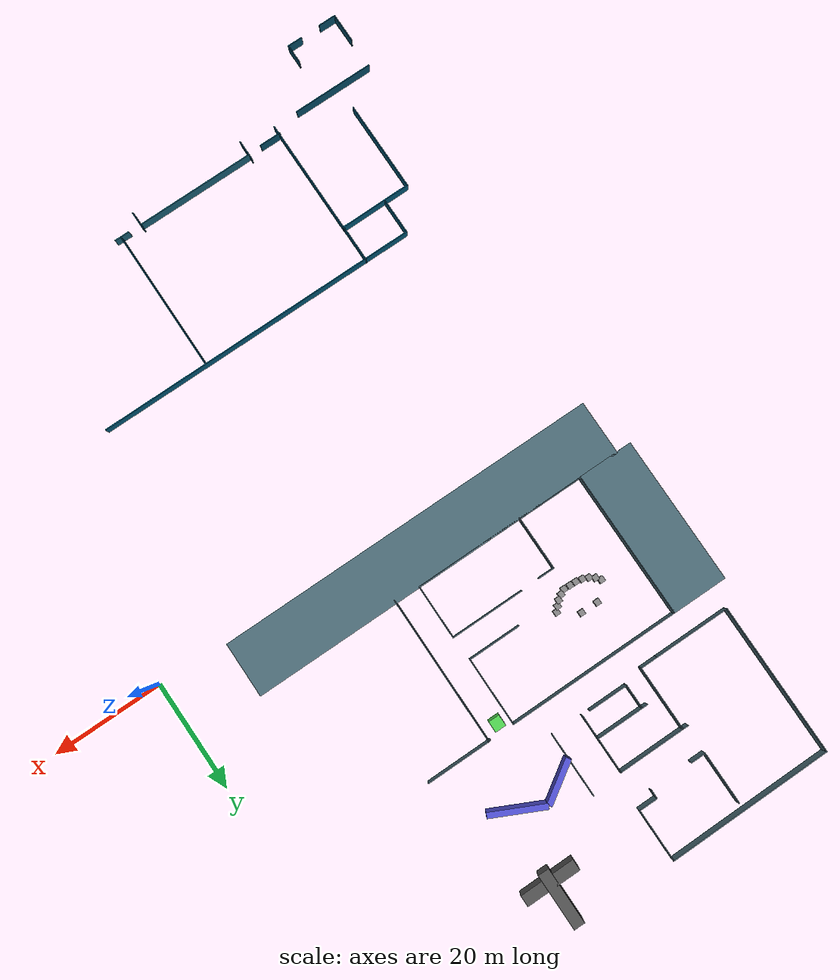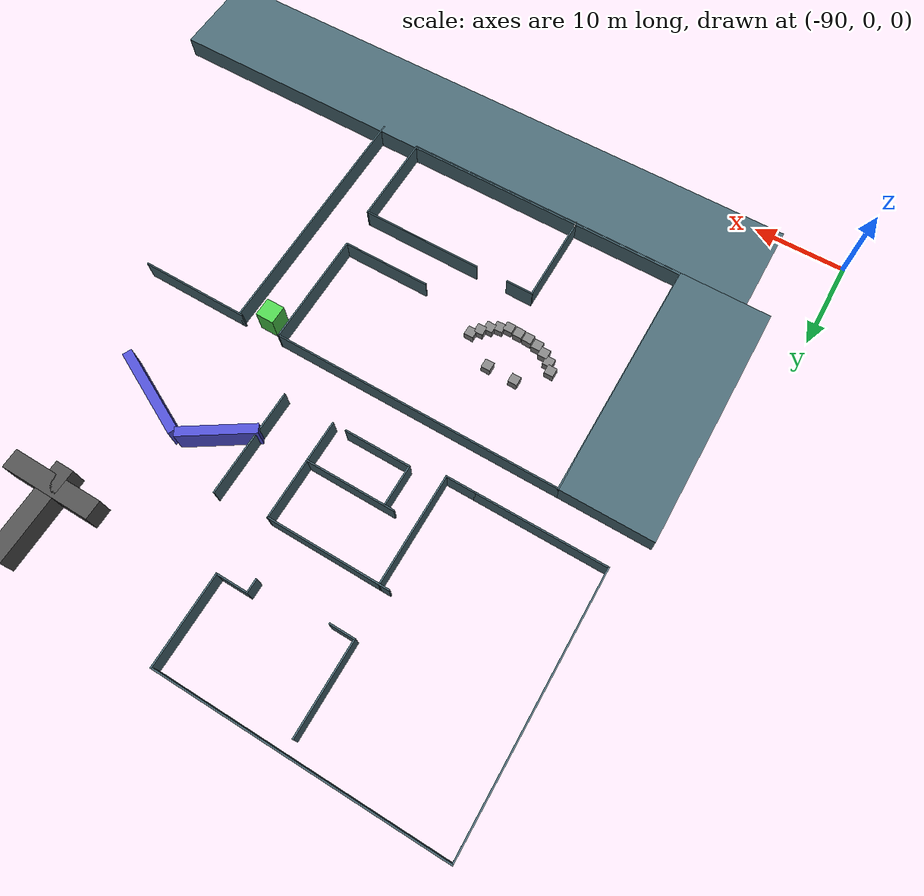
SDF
<sdf version="1.6">
 <model name="eceb_mp3">
  <pose>2.10284 -4.41124 0 0 -0 0</pose>
  <link name="Wall_10">
   <collision name="Wall_10_Collision">
    <geometry><box><size>7 0.15 2.5</size></box></geometry>
    <pose>0 0 1.25 0 -0 0</pose>
   </collision>
   <visual name="Wall_10_Visual">
    <pose>0 0 1.25 0 -0 0</pose>
    <geometry><box><size>7.25 0.15 2.5</size></box></geometry>
    <material>
     <script><uri>file://media/materials/scripts/gazebo.material</uri><name>Gazebo/Grey</name></script>
     <ambient>0.282353 0.403922 0.447059 1</ambient>
    </material>
    <meta><layer>0</layer></meta>
   </visual>
   <pose>-61.0369 46.7249 0 0 -0 0</pose>
  </link>
  <link name="Wall_102">
   <collision name="Wall_102_Collision">
    <geometry><box><size>12 0.15 2.5</size></box></geometry>
    <pose>0 0 1.25 0 -0 0</pose>
   </collision>
   <visual name="Wall_102_Visual">
    <pose>0 0 1.25 0 -0 0</pose>
    <geometry><box><size>12 0.15 2.5</size></box></geometry>
    <material>
     <script><uri>file://media/materials/scripts/gazebo.material</uri><name>Gazebo/Grey</name></script>
     <ambient>0.282353 0.403922 0.447059 1</ambient>
    </material>
    <meta><layer>0</layer></meta>
   </visual>
   <pose>-35.6171 41.6407 0 0 -0 0</pose>
  </link>
  <link name="Wall_105">
   <collision name="Wall_105_Collision">
    <geometry><box><size>27 0.15 2.5</size></box></geometry>
    <pose>0 0 1.25 0 -0 0</pose>
   </collision>
   <visual name="Wall_105_Visual">
    <pose>0 0 1.25 0 -0 0</pose>
    <geometry><box><size>27.25 0.15 2.5</size></box></geometry>
    <material>
     <script><uri>file://media/materials/scripts/gazebo.material</uri><name>Gazebo/Grey</name></script>
     <ambient>0.282353 0.403922 0.447059 1</ambient>
    </material>
    <meta><layer>0</layer></meta>
   </visual>
   <pose>-41.2921 28.0907 0 0 -0 1.5708</pose>
  </link>
  <link name="Wall_111">
   <collision name="Wall_111_Collision">
    <geometry><box><size>70 10 2.5</size></box></geometry>
    <pose>0 0 1.25 0 -0 0</pose>
   </collision>
   <visual name="Wall_111_Visual">
    <pose>0 0 1.25 0 -0 0</pose>
    <geometry><box><size>70 10 2.5</size></box></geometry>
    <material>
     <script><uri>file://media/materials/scripts/gazebo.material</uri><name>Gazebo/Grey</name></script>
     <ambient>0.282353 0.403922 0.447059 1</ambient>
    </material>
    <meta><layer>0</layer></meta>
   </visual>
   <pose>-50 10.230800 0 0 -0 3.14159</pose>
  </link>
  <link name="Wall_12">
   <collision name="Wall_12_Collision">
    <geometry><box><size>4 0.15 2.5</size></box></geometry>
    <pose>0 0 1.25 0 -0 0</pose>
   </collision>
   <visual name="Wall_12_Visual">
    <pose>0 0 1.25 0 -0 0</pose>
    <geometry><box><size>4.5 0.15 2.5</size></box></geometry>
    <material>
     <script><uri>file://media/materials/scripts/gazebo.material</uri><name>Gazebo/Grey</name></script>
     <ambient>0.282353 0.403922 0.447059 1</ambient>
    </material>
    <meta><layer>0</layer></meta>
   </visual>
   <pose>-55.9869 48.8998 0 0 -0 -1.5708</pose>
  </link>
  <link name="Wall_135">
   <collision name="Wall_135_Collision">
    <geometry><box><size>59 0.15 2.5</size></box></geometry>
    <pose>0 0 1.25 0 -0 0</pose>
   </collision>
   <visual name="Wall_135_Visual">
    <pose>0 0 1.25 0 -0 0</pose>
    <geometry><box><size>59.75 0.15 2.5</size></box></geometry>
    <material>
     <script><uri>file://media/materials/scripts/gazebo.material</uri><name>Gazebo/Grey</name></script>
     <ambient>0.00784314 0.372549 0.505882 1</ambient>
    </material>
    <meta><layer>0</layer></meta>
   </visual>
   <pose>-47.3625 -35.069 0 0 -0 3.14159</pose>
  </link>
  <link name="Wall_137">
   <collision name="Wall_137_Collision">
    <geometry><box><size>6 0.15 2.5</size></box></geometry>
    <pose>0 0 1.25 0 -0 0</pose>
   </collision>
   <visual name="Wall_137_Visual">
    <pose>0 0 1.25 0 -0 0</pose>
    <geometry><box><size>6.75 0.15 2.5</size></box></geometry>
    <material>
     <script><uri>file://media/materials/scripts/gazebo.material</uri><name>Gazebo/Grey</name></script>
     <ambient>0.00784314 0.372549 0.505882 1</ambient>
    </material>
    <meta><layer>0</layer></meta>
   </visual>
   <pose>-77.1625 -38.369 0 0 -0 -1.5708</pose>
  </link>
  <link name="Wall_138">
   <collision name="Wall_138_Collision">
    <geometry><box><size>4 0.15 2.5</size></box></geometry>
    <pose>0 0 1.25 0 -0 0</pose>
   </collision>
   <visual name="Wall_138_Visual">
    <pose>0 0 1.25 0 -0 0</pose>
    <geometry><box><size>4.75 0.15 2.5</size></box></geometry>
    <material>
     <script><uri>file://media/materials/scripts/gazebo.material</uri><name>Gazebo/Grey</name></script>
     <ambient>0.00784314 0.372549 0.505882 1</ambient>
    </material>
    <meta><layer>0</layer></meta>
   </visual>
   <pose>-79.4625 -41.669 0 0 -0 3.14159</pose>
  </link>
  <link name="Wall_139">
   <collision name="Wall_139_Collision">
    <geometry><box><size>16 0.15 2.5</size></box></geometry>
    <pose>0 0 1.25 0 -0 0</pose>
   </collision>
   <visual name="Wall_139_Visual">
    <pose>0 0 1.25 0 -0 0</pose>
    <geometry><box><size>16.5 0.15 2.5</size></box></geometry>
    <material>
     <script><uri>file://media/materials/scripts/gazebo.material</uri><name>Gazebo/Grey</name></script>
     <ambient>0.00784314 0.372549 0.505882 1</ambient>
    </material>
    <meta><layer>0</layer></meta>
   </visual>
   <pose>-81.7625 -49.844 0 0 -0 -1.5708</pose>
  </link>
  <link name="Wall_141">
   <collision name="Wall_141_Collision">
    <geometry><box><size>14 0.15 2.5</size></box></geometry>
    <pose>0 0 1.25 0 -0 0</pose>
   </collision>
   <visual name="Wall_141_Visual">
    <pose>0 0 1.25 0 -0 0</pose>
    <geometry><box><size>14.75 0.15 2.5</size></box></geometry>
    <material>
     <script><uri>file://media/materials/scripts/gazebo.material</uri><name>Gazebo/Grey</name></script>
     <ambient>0.0313726 0.333333 0.443137 1</ambient>
    </material>
    <meta><layer>0</layer></meta>
   </visual>
   <pose>-80.7569 -62.752 0 0 -0 0</pose>
  </link>
  <link name="Wall_143">
   <collision name="Wall_143_Collision">
    <geometry><box><size>5 0.15 2.5</size></box></geometry>
    <pose>0 0 1.25 0 -0 0</pose>
   </collision>
   <visual name="Wall_143_Visual">
    <pose>0 0 1.25 0 -0 0</pose>
    <geometry><box><size>5.25 0.15 2.5</size></box></geometry>
    <material>
     <script><uri>file://media/materials/scripts/gazebo.material</uri><name>Gazebo/Grey</name></script>
     <ambient>0.0313726 0.333333 0.443137 1</ambient>
    </material>
    <meta><layer>0</layer></meta>
   </visual>
   <pose>-88.1514 -70.7787 0 0 -0 -1.5708</pose>
  </link>
  <link name="Wall_144">
   <collision name="Wall_144_Collision">
    <geometry><box><size>3 0.15 2.5</size></box></geometry>
    <pose>0 0 1.25 0 -0 0</pose>
   </collision>
   <visual name="Wall_144_Visual">
    <pose>0 0 1.25 0 -0 0</pose>
    <geometry><box><size>3.25 0.15 2.5</size></box></geometry>
    <material>
     <script><uri>file://media/materials/scripts/gazebo.material</uri><name>Gazebo/Grey</name></script>
     <ambient>0.0313726 0.333333 0.443137 1</ambient>
    </material>
    <meta><layer>0</layer></meta>
   </visual>
   <pose>-86.6014 -73.3287 0 0 -0 0</pose>
  </link>
  <link name="Wall_146">
   <collision name="Wall_146_Collision">
    <geometry><box><size>2 0.15 2.5</size></box></geometry>
    <pose>0 0 1.25 0 -0 0</pose>
   </collision>
   <visual name="Wall_146_Visual">
    <pose>0 0 1.25 0 -0 0</pose>
    <geometry><box><size>2.75 0.15 2.5</size></box></geometry>
    <material>
     <script><uri>file://media/materials/scripts/gazebo.material</uri><name>Gazebo/Grey</name></script>
     <ambient>0.0313726 0.333333 0.443137 1</ambient>
    </material>
    <meta><layer>0</layer></meta>
   </visual>
   <pose>-79.9583 -73.2333 0 0 -0 0</pose>
  </link>
  <link name="Wall_147">
   <collision name="Wall_147_Collision">
    <geometry><box><size>3 0.15 2.5</size></box></geometry>
    <pose>0 0 1.25 0 -0 0</pose>
   </collision>
   <visual name="Wall_147_Visual">
    <pose>0 0 1.25 0 -0 0</pose>
    <geometry><box><size>3.5 0.15 2.5</size></box></geometry>
    <material>
     <script><uri>file://media/materials/scripts/gazebo.material</uri><name>Gazebo/Grey</name></script>
     <ambient>0.0313726 0.333333 0.443137 1</ambient>
    </material>
    <meta><layer>0</layer></meta>
   </visual>
   <pose>-78.6583 -71.5583 0 0 -0 1.5708</pose>
  </link>
  <link name="Wall_156">
   <collision name="Wall_156_Collision">
    <geometry><box><size>21 0.15 2.5</size></box></geometry>
    <pose>0 0 1.25 0 -0 0</pose>
   </collision>
   <visual name="Wall_156_Visual">
    <pose>0 0 1.25 0 -0 0</pose>
    <geometry><box><size>21.25 0.15 2.5</size></box></geometry>
    <material>
     <script><uri>file://media/materials/scripts/gazebo.material</uri><name>Gazebo/Grey</name></script>
     <ambient>0.00784314 0.372549 0.505882 1</ambient>
    </material>
    <meta><layer>0</layer></meta>
   </visual>
   <pose>-68.8592 -52.1746 0 0 -0 1.5708</pose>
  </link>
  <link name="Wall_157">
   <collision name="Wall_157_Collision">
    <geometry><box><size>8 0.15 2.5</size></box></geometry>
    <pose>0 0 1.25 0 -0 0</pose>
   </collision>
   <visual name="Wall_157_Visual">
    <pose>0 0 1.25 0 -0 0</pose>
    <geometry><box><size>8.4534 0.15 2.5</size></box></geometry>
    <material>
     <script><uri>file://media/materials/scripts/gazebo.material</uri><name>Gazebo/Grey</name></script>
     <ambient>0.00784314 0.372549 0.505882 1</ambient>
    </material>
    <meta><layer>0</layer></meta>
   </visual>
   <pose>-73.0109 -41.6468 0 0 -0 -3.13625</pose>
  </link>
  <link name="Wall_159">
   <collision name="Wall_159_Collision">
    <geometry><box><size>7 0.15 2.5</size></box></geometry>
    <pose>0 0 1.25 0 -0 0</pose>
   </collision>
   <visual name="Wall_159_Visual">
    <pose>0 0 1.25 0 -0 0</pose>
    <geometry><box><size>7 0.15 2.5</size></box></geometry>
    <material>
     <script><uri>file://media/materials/scripts/gazebo.material</uri><name>Gazebo/Grey</name></script>
     <ambient>0.00784314 0.372549 0.505882 1</ambient>
    </material>
    <meta><layer>0</layer></meta>
   </visual>
   <pose>-68.9119 -38.4042 0 0 -0 -1.5708</pose>
  </link>
  <link name="Wall_16">
   <collision name="Wall_16_Collision">
    <geometry><box><size>11 0.15 2.5</size></box></geometry>
    <pose>0 0 1.25 0 -0 0</pose>
   </collision>
   <visual name="Wall_16_Visual">
    <pose>0 0 1.25 0 -0 0</pose>
    <geometry><box><size>11.5 0.15 2.5</size></box></geometry>
    <material>
     <script><uri>file://media/materials/scripts/gazebo.material</uri><name>Gazebo/Grey</name></script>
     <ambient>0.282353 0.403922 0.447059 1</ambient>
    </material>
    <meta><layer>0</layer></meta>
   </visual>
   <pose>-50.2987 52.2876 0 0 -0 -1.5708</pose>
  </link>
  <link name="Wall_161">
   <collision name="Wall_161_Collision">
    <geometry><box><size>4 0.15 2.5</size></box></geometry>
    <pose>0 0 1.25 0 -0 0</pose>
   </collision>
   <visual name="Wall_161_Visual">
    <pose>0 0 1.25 0 -0 0</pose>
    <geometry><box><size>4 0.15 2.5</size></box></geometry>
    <material>
     <script><uri>file://media/materials/scripts/gazebo.material</uri><name>Gazebo/Grey</name></script>
     <ambient>0.0313726 0.333333 0.443137 1</ambient>
    </material>
    <meta><layer>0</layer></meta>
   </visual>
   <pose>-67.0768 -61.2451 0 0 -0 3.14159</pose>
  </link>
  <link name="Wall_163">
   <collision name="Wall_163_Collision">
    <geometry><box><size>3 0.15 2.5</size></box></geometry>
    <pose>0 0 1.25 0 -0 0</pose>
   </collision>
   <visual name="Wall_163_Visual">
    <pose>0 0 1.25 0 -0 0</pose>
    <geometry><box><size>3.5 0.15 2.5</size></box></geometry>
    <material>
     <script><uri>file://media/materials/scripts/gazebo.material</uri><name>Gazebo/Grey</name></script>
     <ambient>0.0313726 0.333333 0.443137 1</ambient>
    </material>
    <meta><layer>0</layer></meta>
   </visual>
   <pose>-62.6452 -62.0149 0 0 -0 -1.5708</pose>
  </link>
  <link name="Wall_166">
   <collision name="Wall_166_Collision">
    <geometry><box><size>21 0.15 2.5</size></box></geometry>
    <pose>0 0 1.25 0 -0 0</pose>
   </collision>
   <visual name="Wall_166_Visual">
    <pose>0 0 1.25 0 -0 0</pose>
    <geometry><box><size>21.5 0.15 2.5</size></box></geometry>
    <material>
     <script><uri>file://media/materials/scripts/gazebo.material</uri><name>Gazebo/Grey</name></script>
     <ambient>0.109804 0.415686 0.505882 1</ambient>
    </material>
    <meta><layer>0</layer></meta>
   </visual>
   <pose>-51.8547 -61.0074 0 0 -0 0</pose>
  </link>
  <link name="Wall_168">
   <collision name="Wall_168_Collision">
    <geometry><box><size>3 0.15 2.5</size></box></geometry>
    <pose>0 0 1.25 0 -0 0</pose>
   </collision>
   <visual name="Wall_168_Visual">
    <pose>0 0 1.25 0 -0 0</pose>
    <geometry><box><size>3.25 0.15 2.5</size></box></geometry>
    <material>
     <script><uri>file://media/materials/scripts/gazebo.material</uri><name>Gazebo/Grey</name></script>
     <ambient>0.0313726 0.333333 0.443137 1</ambient>
    </material>
    <meta><layer>0</layer></meta>
   </visual>
   <pose>-40.9887 -61.8787 0 0 -0 -1.5708</pose>
  </link>
  <link name="Wall_170">
   <collision name="Wall_170_Collision">
    <geometry><box><size>2 0.15 2.5</size></box></geometry>
    <pose>0 0 1.25 0 -0 0</pose>
   </collision>
   <visual name="Wall_170_Visual">
    <pose>0 0 1.25 0 -0 0</pose>
    <geometry><box><size>2.75 0.15 2.5</size></box></geometry>
    <material>
     <script><uri>file://media/materials/scripts/gazebo.material</uri><name>Gazebo/Grey</name></script>
     <ambient>0.109804 0.415686 0.505882 1</ambient>
    </material>
    <meta><layer>0</layer></meta>
   </visual>
   <pose>-37.3257 -61.0997 0 0 -0 0</pose>
  </link>
  <link name="Wall_172">
   <collision name="Wall_172_Collision">
    <geometry><box><size>26 0.15 2.5</size></box></geometry>
    <pose>0 0 1.25 0 -0 0</pose>
   </collision>
   <visual name="Wall_172_Visual">
    <pose>0 0 1.25 0 -0 0</pose>
    <geometry><box><size>26 0.15 2.5</size></box></geometry>
    <material>
     <script><uri>file://media/materials/scripts/gazebo.material</uri><name>Gazebo/Grey</name></script>
     <ambient>0.00784314 0.372549 0.505882 1</ambient>
    </material>
    <meta><layer>0</layer></meta>
   </visual>
   <pose>-37.0975 -48.0841 0 0 -0 -1.5708</pose>
  </link>
  <link name="Wall_2">
   <collision name="Wall_2_Collision">
    <geometry><box><size>27 0.15 2.5</size></box></geometry>
    <pose>0 0 1.25 0 -0 0</pose>
   </collision>
   <visual name="Wall_2_Visual">
    <pose>0 0 1.25 0 -0 0</pose>
    <geometry><box><size>27.5 0.15 2.5</size></box></geometry>
    <material>
     <script><uri>file://media/materials/scripts/gazebo.material</uri><name>Gazebo/Grey</name></script>
     <ambient>0.282353 0.403922 0.447059 1</ambient>
    </material>
    <meta><layer>0</layer></meta>
   </visual>
   <pose>-85.0369 59.4999 0 0 -0 -1.5708</pose>
  </link>
  <link name="Wall_3">
   <collision name="Wall_3_Collision">
    <geometry><box><size>14 0.15 2.5</size></box></geometry>
    <pose>0 0 1.25 0 -0 0</pose>
   </collision>
   <visual name="Wall_3_Visual">
    <pose>0 0 1.25 0 -0 0</pose>
    <geometry><box><size>14 0.15 2.5</size></box></geometry>
    <material>
     <script><uri>file://media/materials/scripts/gazebo.material</uri><name>Gazebo/Grey</name></script>
     <ambient>0.282353 0.403922 0.447059 1</ambient>
    </material>
    <meta><layer>0</layer></meta>
   </visual>
   <pose>-78.1119 45.8249 0 0 -0 0</pose>
  </link>
  <link name="Wall_32">
   <collision name="Wall_32_Collision">
    <geometry><box><size>30 0.15 2.5</size></box></geometry>
    <pose>0 0 1.25 0 -0 0</pose>
   </collision>
   <visual name="Wall_32_Visual">
    <pose>0 0 1.25 0 -0 0</pose>
    <geometry><box><size>30.1457 0.15 2.5</size></box></geometry>
    <material>
     <script><uri>file://media/materials/scripts/gazebo.material</uri><name>Gazebo/Grey</name></script>
     <ambient>0.282353 0.403922 0.447059 1</ambient>
    </material>
    <meta><layer>0</layer></meta>
   </visual>
   <pose>-70.0392 73.2357 0 0 -0 0.00406</pose>
  </link>
  <link name="Wall_34">
   <collision name="Wall_34_Collision">
    <geometry><box><size>9 0.15 2.5</size></box></geometry>
    <pose>0 0 1.25 0 -0 0</pose>
   </collision>
   <visual name="Wall_34_Visual">
    <pose>0 0 1.25 0 -0 0</pose>
    <geometry><box><size>9.5 0.15 2.5</size></box></geometry>
    <material>
     <script><uri>file://media/materials/scripts/gazebo.material</uri><name>Gazebo/Grey</name></script>
     <ambient>0.282353 0.403922 0.447059 1</ambient>
    </material>
    <meta><layer>0</layer></meta>
   </visual>
   <pose>-68.8084 67.1704 0 0 -0 -1.5708</pose>
  </link>
  <link name="Wall_35">
   <collision name="Wall_35_Collision">
    <geometry><box><size>2 0.15 2.5</size></box></geometry>
    <pose>0 0 1.25 0 -0 0</pose>
   </collision>
   <visual name="Wall_35_Visual">
    <pose>0 0 1.25 0 -0 0</pose>
    <geometry><box><size>2.75 0.15 2.5</size></box></geometry>
    <material>
     <script><uri>file://media/materials/scripts/gazebo.material</uri><name>Gazebo/Grey</name></script>
     <ambient>0.282353 0.403922 0.447059 1</ambient>
    </material>
    <meta><layer>0</layer></meta>
   </visual>
   <pose>-67.5083 62.4954 0 0 -0 0</pose>
  </link>
  <link name="Wall_37">
   <collision name="Wall_37_Collision">
    <geometry><box><size>9 0.15 2.5</size></box></geometry>
    <pose>0 0 1.25 0 -0 0</pose>
   </collision>
   <visual name="Wall_37_Visual">
    <pose>0 0 1.25 0 -0 0</pose>
    <geometry><box><size>9.5 0.15 2.5</size></box></geometry>
    <material>
     <script><uri>file://media/materials/scripts/gazebo.material</uri><name>Gazebo/Grey</name></script>
     <ambient>0.282353 0.403922 0.447059 1</ambient>
    </material>
    <meta><layer>0</layer></meta>
   </visual>
   <pose>-55.0415 68.6216 0 0 -0 -1.5708</pose>
  </link>
  <link name="Wall_38">
   <collision name="Wall_38_Collision">
    <geometry><box><size>3 0.15 2.5</size></box></geometry>
    <pose>0 0 1.25 0 -0 0</pose>
   </collision>
   <visual name="Wall_38_Visual">
    <pose>0 0 1.25 0 -0 0</pose>
    <geometry><box><size>3.5 0.15 2.5</size></box></geometry>
    <material>
     <script><uri>file://media/materials/scripts/gazebo.material</uri><name>Gazebo/Grey</name></script>
     <ambient>0.282353 0.403922 0.447059 1</ambient>
    </material>
    <meta><layer>0</layer></meta>
   </visual>
   <pose>-56.7165 63.9466 0 0 -0 3.14159</pose>
  </link>
  <link name="Wall_4">
   <collision name="Wall_4_Collision">
    <geometry><box><size>3 0.15 2.5</size></box></geometry>
    <pose>0 0 1.25 0 -0 0</pose>
   </collision>
   <visual name="Wall_4_Visual">
    <pose>0 0 1.25 0 -0 0</pose>
    <geometry><box><size>3.25 0.15 2.5</size></box></geometry>
    <material>
     <script><uri>file://media/materials/scripts/gazebo.material</uri><name>Gazebo/Grey</name></script>
     <ambient>0.282353 0.403922 0.447059 1</ambient>
    </material>
    <meta><layer>0</layer></meta>
   </visual>
   <pose>-69.6369 45.8249 0 0 -0 0</pose>
  </link>
  <link name="Wall_43">
   <collision name="Wall_43_Collision">
    <geometry><box><size>1 0.15 2.5</size></box></geometry>
    <pose>0 0 1.25 0 -0 0</pose>
   </collision>
   <visual name="Wall_43_Visual">
    <pose>0 0 1.25 0 -0 0</pose>
    <geometry><box><size>1.5 0.15 2.5</size></box></geometry>
    <material>
     <script><uri>file://media/materials/scripts/gazebo.material</uri><name>Gazebo/Grey</name></script>
     <ambient>0.282353 0.403922 0.447059 1</ambient>
    </material>
    <meta><layer>0</layer></meta>
   </visual>
   <pose>-58.3915 63.2716 0 0 -0 -1.5708</pose>
  </link>
  <link name="Wall_5">
   <collision name="Wall_5_Collision">
    <geometry><box><size>11 0.15 2.5</size></box></geometry>
    <pose>0 0 1.25 0 -0 0</pose>
   </collision>
   <visual name="Wall_5_Visual">
    <pose>0 0 1.25 0 -0 0</pose>
    <geometry><box><size>11.75 0.15 2.5</size></box></geometry>
    <material>
     <script><uri>file://media/materials/scripts/gazebo.material</uri><name>Gazebo/Grey</name></script>
     <ambient>0.282353 0.403922 0.447059 1</ambient>
    </material>
    <meta><layer>0</layer></meta>
   </visual>
   <pose>-68.0869 51.6249 0 0 -0 1.5708</pose>
  </link>
  <link name="Wall_6">
   <collision name="Wall_6_Collision">
    <geometry><box><size>13 0.15 2.5</size></box></geometry>
    <pose>0 0 1.25 0 -0 0</pose>
   </collision>
   <visual name="Wall_6_Visual">
    <pose>0 0 1.25 0 -0 0</pose>
    <geometry><box><size>13.25 0.15 2.5</size></box></geometry>
    <material>
     <script><uri>file://media/materials/scripts/gazebo.material</uri><name>Gazebo/Grey</name></script>
     <ambient>0.282353 0.403922 0.447059 1</ambient>
    </material>
    <meta><layer>0</layer></meta>
   </visual>
   <pose>-62.5369 57.4248 0 0 -0 0</pose>
  </link>
  <link name="Wall_7">
   <collision name="Wall_7_Collision">
    <geometry><box><size>6 0.15 2.5</size></box></geometry>
    <pose>0 0 1.25 0 -0 0</pose>
   </collision>
   <visual name="Wall_7_Visual">
    <pose>0 0 1.25 0 -0 0</pose>
    <geometry><box><size>6.5 0.15 2.5</size></box></geometry>
    <material>
     <script><uri>file://media/materials/scripts/gazebo.material</uri><name>Gazebo/Grey</name></script>
     <ambient>0.282353 0.403922 0.447059 1</ambient>
    </material>
    <meta><layer>0</layer></meta>
   </visual>
   <pose>-55.9869 54.2499 0 0 -0 -1.5708</pose>
  </link>
  <link name="Wall_8">
   <collision name="Wall_8_Collision">
    <geometry><box><size>9 0.15 2.5</size></box></geometry>
    <pose>0 0 1.25 0 -0 0</pose>
   </collision>
   <visual name="Wall_8_Visual">
    <pose>0 0 1.25 0 -0 0</pose>
    <geometry><box><size>9.75 0.15 2.5</size></box></geometry>
    <material>
     <script><uri>file://media/materials/scripts/gazebo.material</uri><name>Gazebo/Grey</name></script>
     <ambient>0.282353 0.403922 0.447059 1</ambient>
    </material>
    <meta><layer>0</layer></meta>
   </visual>
   <pose>-60.7869 51.0749 0 0 -0 3.14159</pose>
  </link>
  <link name="Wall_80">
   <collision name="Wall_80_Collision">
    <geometry><box><size>26 0.15 2.5</size></box></geometry>
    <pose>0 0 1.25 0 -0 0</pose>
   </collision>
   <visual name="Wall_80_Visual">
    <pose>0 0 1.25 0 -0 0</pose>
    <geometry><box><size>26.75 0.15 2.5</size></box></geometry>
    <material>
     <script><uri>file://media/materials/scripts/gazebo.material</uri><name>Gazebo/Grey</name></script>
     <ambient>0.282353 0.403922 0.447059 1</ambient>
    </material>
    <meta><layer>0</layer></meta>
   </visual>
   <pose>-77.6772 28.3223 0 0 -0 -1.5708</pose>
  </link>
  <link name="Wall_113">
   <collision name="Wall_113_Collision">
    <geometry><box><size>26 10 2.5</size></box></geometry>
    <pose>0 0 1.25 0 -0 0</pose>
   </collision>
   <visual name="Wall_113_Visual">
    <pose>0 0 1.25 0 -0 0</pose>
    <geometry><box><size>26.75 10 2.5</size></box></geometry>
    <material>
     <script><uri>file://media/materials/scripts/gazebo.material</uri><name>Gazebo/Grey</name></script>
     <ambient>0.282353 0.403922 0.447059 1</ambient>
    </material>
    <meta><layer>0</layer></meta>
   </visual>
   <pose>-82.6772 28.3223 0 0 -0 -1.5708</pose>
  </link>
  <link name="Wall_81">
   <collision name="Wall_81_Collision">
    <geometry><box><size>32 0.15 2.5</size></box></geometry>
    <pose>0 0 1.25 0 -0 0</pose>
   </collision>
   <visual name="Wall_81_Visual">
    <pose>0 0 1.25 0 -0 0</pose>
    <geometry><box><size>32 0.15 2.5</size></box></geometry>
    <material>
     <script><uri>file://media/materials/scripts/gazebo.material</uri><name>Gazebo/Grey</name></script>
     <ambient>0.282353 0.403922 0.447059 1</ambient>
    </material>
    <meta><layer>0</layer></meta>
   </visual>
   <pose>-61.7522 15.0223 0 0 -0 0</pose>
  </link>
  <link name="Wall_82">
   <collision name="Wall_82_Collision">
    <geometry><box><size>10 0.15 2.5</size></box></geometry>
    <pose>0 0 1.25 0 -0 0</pose>
   </collision>
   <visual name="Wall_82_Visual">
    <pose>0 0 1.25 0 -0 0</pose>
    <geometry><box><size>10 0.15 2.5</size></box></geometry>
    <material>
     <script><uri>file://media/materials/scripts/gazebo.material</uri><name>Gazebo/Grey</name></script>
     <ambient>0.282353 0.403922 0.447059 1</ambient>
    </material>
    <meta><layer>0</layer></meta>
   </visual>
   <pose>-45.8272 19.9473 0 0 -0 1.5708</pose>
  </link>
  <link name="Wall_83">
   <collision name="Wall_83_Collision">
    <geometry><box><size>13 0.15 2.5</size></box></geometry>
    <pose>0 0 1.25 0 -0 0</pose>
   </collision>
   <visual name="Wall_83_Visual">
    <pose>0 0 1.25 0 -0 0</pose>
    <geometry><box><size>13.5 0.15 2.5</size></box></geometry>
    <material>
     <script><uri>file://media/materials/scripts/gazebo.material</uri><name>Gazebo/Grey</name></script>
     <ambient>0.282353 0.403922 0.447059 1</ambient>
    </material>
    <meta><layer>0</layer></meta>
   </visual>
   <pose>-52.5022 24.8723 0 0 -0 3.14159</pose>
  </link>
  <link name="Wall_85">
   <collision name="Wall_85_Collision">
    <geometry><box><size>3 0.15 2.5</size></box></geometry>
    <pose>0 0 1.25 0 -0 0</pose>
   </collision>
   <visual name="Wall_85_Visual">
    <pose>0 0 1.25 0 -0 0</pose>
    <geometry><box><size>3 0.15 2.5</size></box></geometry>
    <material>
     <script><uri>file://media/materials/scripts/gazebo.material</uri><name>Gazebo/Grey</name></script>
     <ambient>0.282353 0.403922 0.447059 1</ambient>
    </material>
    <meta><layer>0</layer></meta>
   </visual>
   <pose>-64.1821 24.7849 0 0 -0 3.14159</pose>
  </link>
  <link name="Wall_86">
   <collision name="Wall_86_Collision">
    <geometry><box><size>10 0.15 2.5</size></box></geometry>
    <pose>0 0 1.25 0 -0 0</pose>
   </collision>
   <visual name="Wall_86_Visual">
    <pose>0 0 1.25 0 -0 0</pose>
    <geometry><box><size>10 0.15 2.5</size></box></geometry>
    <material>
     <script><uri>file://media/materials/scripts/gazebo.material</uri><name>Gazebo/Grey</name></script>
     <ambient>0.282353 0.403922 0.447059 1</ambient>
    </material>
    <meta><layer>0</layer></meta>
   </visual>
   <pose>-65.6071 19.8599 0 0 -0 -1.5708</pose>
  </link>
  <link name="Wall_87">
   <collision name="Wall_87_Collision">
    <geometry><box><size>0.75 0.15 2.5</size></box></geometry>
    <pose>0 0 1.25 0 -0 0</pose>
   </collision>
   <visual name="Wall_87_Visual">
    <pose>0 0 1.25 0 -0 0</pose>
    <geometry><box><size>0.75 0.15 2.5</size></box></geometry>
    <material>
     <script><uri>file://media/materials/scripts/gazebo.material</uri><name>Gazebo/Grey</name></script>
     <ambient>1 1 1 1</ambient>
    </material>
    <meta><layer>0</layer></meta>
   </visual>
   <pose>-65.6071 15.2349 0 0 -0 1.5708</pose>
  </link>
  <link name="Wall_9">
   <collision name="Wall_9_Collision">
    <geometry><box><size>4 0.15 2.5</size></box></geometry>
    <pose>0 0 1.25 0 -0 0</pose>
   </collision>
   <visual name="Wall_9_Visual">
    <pose>0 0 1.25 0 -0 0</pose>
    <geometry><box><size>4.5 0.15 2.5</size></box></geometry>
    <material>
     <script><uri>file://media/materials/scripts/gazebo.material</uri><name>Gazebo/Grey</name></script>
     <ambient>0.282353 0.403922 0.447059 1</ambient>
    </material>
    <meta><layer>0</layer></meta>
   </visual>
   <pose>-64.5869 48.8998 0 0 -0 -1.5708</pose>
  </link>
  <link name="Wall_92">
   <collision name="Wall_92_Collision">
    <geometry><box><size>31 0.15 2.5</size></box></geometry>
    <pose>0 0 1.25 0 -0 0</pose>
   </collision>
   <visual name="Wall_92_Visual">
    <pose>0 0 1.25 0 -0 0</pose>
    <geometry><box><size>31.75 0.15 2.5</size></box></geometry>
    <material>
     <script><uri>file://media/materials/scripts/gazebo.material</uri><name>Gazebo/Grey</name></script>
     <ambient>0.282353 0.403922 0.447059 1</ambient>
    </material>
    <meta><layer>0</layer></meta>
   </visual>
   <pose>-61.8772 41.6223 0 0 -0 0</pose>
  </link>
  <link name="Wall_93">
   <collision name="Wall_93_Collision">
    <geometry><box><size>12 0.15 2.5</size></box></geometry>
    <pose>0 0 1.25 0 -0 0</pose>
   </collision>
   <visual name="Wall_93_Visual">
    <pose>0 0 1.25 0 -0 0</pose>
    <geometry><box><size>12.5 0.15 2.5</size></box></geometry>
    <material>
     <script><uri>file://media/materials/scripts/gazebo.material</uri><name>Gazebo/Grey</name></script>
     <ambient>0.282353 0.403922 0.447059 1</ambient>
    </material>
    <meta><layer>0</layer></meta>
   </visual>
   <pose>-46.0772 35.4473 0 0 -0 -1.5708</pose>
  </link>
  <link name="Wall_94">
   <collision name="Wall_94_Collision">
    <geometry><box><size>9 0.15 2.5</size></box></geometry>
    <pose>0 0 1.25 0 -0 0</pose>
   </collision>
   <visual name="Wall_94_Visual">
    <pose>0 0 1.25 0 -0 0</pose>
    <geometry><box><size>9.75 0.15 2.5</size></box></geometry>
    <material>
     <script><uri>file://media/materials/scripts/gazebo.material</uri><name>Gazebo/Grey</name></script>
     <ambient>0.282353 0.403922 0.447059 1</ambient>
    </material>
    <meta><layer>0</layer></meta>
   </visual>
   <pose>-50.8772 29.2723 0 0 -0 3.14159</pose>
  </link>
  <link name="obstacle_L_shape">
   <collision name="collision"><geometry><box><size>10.0 1.0 3.0</size></box></geometry></collision>
   <visual name="visual">
    <geometry><box><size>10.0 1.0 3.0</size></box></geometry>
    <material><ambient>0.3 0.3 0.8 1.0</ambient><diffuse>0.3 0.3 0.8 1.0</diffuse></material>
   </visual>
   <pose>-39 53 1.5 0 0 -0.449999</pose>
  </link>
  <link name="obstacle_L_shape_part2">
   <collision name="collision"><geometry><box><size>1.0 8.0 3.0</size></box></geometry></collision>
   <visual name="visual">
    <geometry><box><size>1.0 8.0 3.0</size></box></geometry>
    <material><ambient>0.3 0.3 0.8 1.0</ambient><diffuse>0.3 0.3 0.8 1.0</diffuse></material>
   </visual>
   <pose>-47.0 53.0 1.5 0 0 -1</pose>
  </link>
  <link name="obstacle_circle_part7">
   <collision name="collision"><geometry><box><size>2.0 2.0 3.0</size></box></geometry></collision>
   <visual name="visual">
    <geometry><box><size>2.0 2.0 3.0</size></box></geometry>
    <material><ambient>0.3 0.8 0.3 1.0</ambient><diffuse>0.3 0.8 0.3 1.0</diffuse></material>
   </visual>
   <pose>-44.0 40.0 1.5 0 0 0.0</pose>
  </link>
  <link name="central_intersection_h">
   <collision name="collision"><geometry><box><size>10.0 2.0 3.0</size></box></geometry></collision>
   <visual name="visual">
    <geometry><box><size>10.0 2.0 3.0</size></box></geometry>
    <material><ambient>0.3 0.3 0.3 1.0</ambient><diffuse>0.3 0.3 0.3 1.0</diffuse></material>
   </visual>
   <pose>-37.0 65 1.5 0 0 0.0</pose>
  </link>
  <link name="central_intersection_v">
   <collision name="collision"><geometry><box><size>2.0 10.0 3.0</size></box></geometry></collision>
   <visual name="visual">
    <geometry><box><size>2.0 10.0 3.0</size></box></geometry>
    <material><ambient>0.3 0.3 0.3 1.0</ambient><diffuse>0.3 0.3 0.3 1.0</diffuse></material>
   </visual>
   <pose>-37.0 68 1.5 0 0 0.0</pose>
  </link>
  <link name="cylinder_1">
   <collision name="collision"><geometry><box><size>1.0 1.0 1.0</size></box></geometry></collision>
   <visual name="visual">
    <geometry><box><size>1.0 1.0 1.0</size></box></geometry>
    <material><ambient>0.5 0.5 0.5 1.0</ambient><diffuse>0.5 0.5 0.5 1.0</diffuse></material>
   </visual>
   <pose>-71.1281 30.7615 0.5 0 0 0</pose>
  </link>
  <link name="cylinder_2">
   <collision name="collision"><geometry><box><size>1.0 1.0 1.0</size></box></geometry></collision>
   <visual name="visual">
    <geometry><box><size>1.0 1.0 1.0</size></box></geometry>
    <material><ambient>0.5 0.5 0.5 1.0</ambient><diffuse>0.5 0.5 0.5 1.0</diffuse></material>
   </visual>
   <pose>-70.5035 29.9806 0.5 0 0 0</pose>
  </link>
  <link name="cylinder_3">
   <collision name="collision"><geometry><box><size>1.0 1.0 1.0</size></box></geometry></collision>
   <visual name="visual">
    <geometry><box><size>1.0 1.0 1.0</size></box></geometry>
    <material><ambient>0.5 0.5 0.5 1.0</ambient><diffuse>0.5 0.5 0.5 1.0</diffuse></material>
   </visual>
   <pose>-69.6349 29.3454 0.5 0 0 0</pose>
  </link>
  <link name="cylinder_4">
   <collision name="collision"><geometry><box><size>1.0 1.0 1.0</size></box></geometry></collision>
   <visual name="visual">
    <geometry><box><size>1.0 1.0 1.0</size></box></geometry>
    <material><ambient>0.5 0.5 0.5 1.0</ambient><diffuse>0.5 0.5 0.5 1.0</diffuse></material>
   </visual>
   <pose>-68.6251 28.9127 0.5 0 0 0</pose>
  </link>
  <link name="cylinder_5">
   <collision name="collision"><geometry><box><size>1.0 1.0 1.0</size></box></geometry></collision>
   <visual name="visual">
    <geometry><box><size>1.0 1.0 1.0</size></box></geometry>
    <material><ambient>0.5 0.5 0.5 1.0</ambient><diffuse>0.5 0.5 0.5 1.0</diffuse></material>
   </visual>
   <pose>-67.4688 28.6921 0.5 0 0 0</pose>
  </link>
  <link name="cylinder_6">
   <collision name="collision"><geometry><box><size>1.0 1.0 1.0</size></box></geometry></collision>
   <visual name="visual">
    <geometry><box><size>1.0 1.0 1.0</size></box></geometry>
    <material><ambient>0.5 0.5 0.5 1.0</ambient><diffuse>0.5 0.5 0.5 1.0</diffuse></material>
   </visual>
   <pose>-66.3492 28.6471 0.5 0 0 0</pose>
  </link>
  <link name="cylinder_7">
   <collision name="collision"><geometry><box><size>1.0 1.0 1.0</size></box></geometry></collision>
   <visual name="visual">
    <geometry><box><size>1.0 1.0 1.0</size></box></geometry>
    <material><ambient>0.5 0.5 0.5 1.0</ambient><diffuse>0.5 0.5 0.5 1.0</diffuse></material>
   </visual>
   <pose>-65.2046 28.5938 0.5 0 0 0.000176</pose>
  </link>
  <link name="cylinder_8">
   <collision name="collision"><geometry><box><size>1.0 1.0 1.0</size></box></geometry></collision>
   <visual name="visual">
    <geometry><box><size>1.0 1.0 1.0</size></box></geometry>
    <material><ambient>0.5 0.5 0.5 1.0</ambient><diffuse>0.5 0.5 0.5 1.0</diffuse></material>
   </visual>
   <pose>-64.3154 29.0522 0.5 0 0 0.05316</pose>
  </link>
  <link name="cylinder_9">
   <collision name="collision"><geometry><box><size>1.0 1.0 1.0</size></box></geometry></collision>
   <visual name="visual">
    <geometry><box><size>1.0 1.0 1.0</size></box></geometry>
    <material><ambient>0.5 0.5 0.5 1.0</ambient><diffuse>0.5 0.5 0.5 1.0</diffuse></material>
   </visual>
   <pose>-63.4533 29.5628 0.5 0 0 -0.007437</pose>
  </link>
  <link name="cylinder_10">
   <collision name="collision"><geometry><box><size>1.0 1.0 1.0</size></box></geometry></collision>
   <visual name="visual">
    <geometry><box><size>1.0 1.0 1.0</size></box></geometry>
    <material><ambient>0.5 0.5 0.5 1.0</ambient><diffuse>0.5 0.5 0.5 1.0</diffuse></material>
   </visual>
   <pose>-62.7548 30.2806 0.5 0 0 0.036998</pose>
  </link>
  <link name="cylinder_11">
   <collision name="collision"><geometry><box><size>1.0 1.0 1.0</size></box></geometry></collision>
   <visual name="visual">
    <geometry><box><size>1.0 1.0 1.0</size></box></geometry>
    <material><ambient>0.5 0.5 0.5 1.0</ambient><diffuse>0.5 0.5 0.5 1.0</diffuse></material>
   </visual>
   <pose>-62.066 31.0196 0.5 0 0 0.016147</pose>
  </link>
  <link name="cylinder_12">
   <collision name="collision"><geometry><box><size>1.0 1.0 1.0</size></box></geometry></collision>
   <visual name="visual">
    <geometry><box><size>1.0 1.0 1.0</size></box></geometry>
    <material><ambient>0.5 0.5 0.5 1.0</ambient><diffuse>0.5 0.5 0.5 1.0</diffuse></material>
   </visual>
   <pose>-68.4729 33.3955 0.5 0 0 0</pose>
  </link>
  <link name="cylinder_13">
   <collision name="collision"><geometry><box><size>1.0 1.0 1.0</size></box></geometry></collision>
   <visual name="visual">
    <geometry><box><size>1.0 1.0 1.0</size></box></geometry>
    <material><ambient>0.5 0.5 0.5 1.0</ambient><diffuse>0.5 0.5 0.5 1.0</diffuse></material>
   </visual>
   <pose>-65.3921 33.3628 0.5 0 0 0</pose>
  </link>
  <static>1</static>
 </model>
</sdf>
